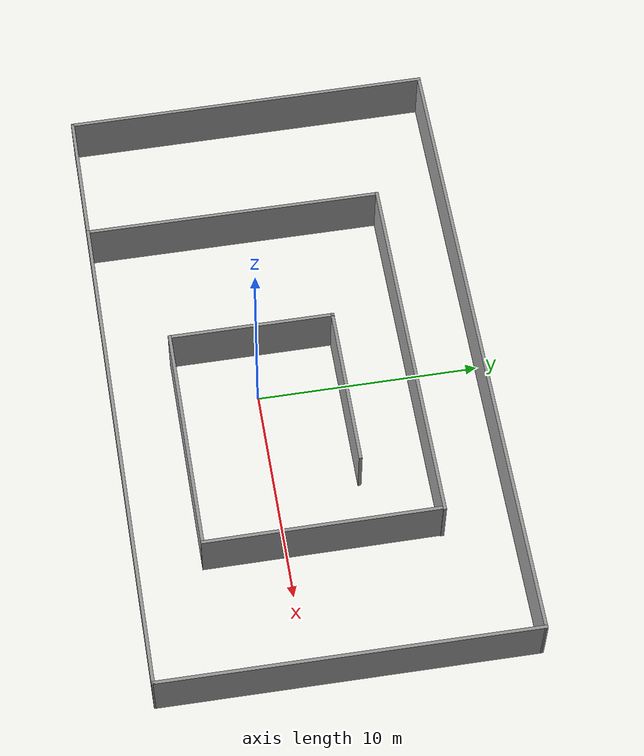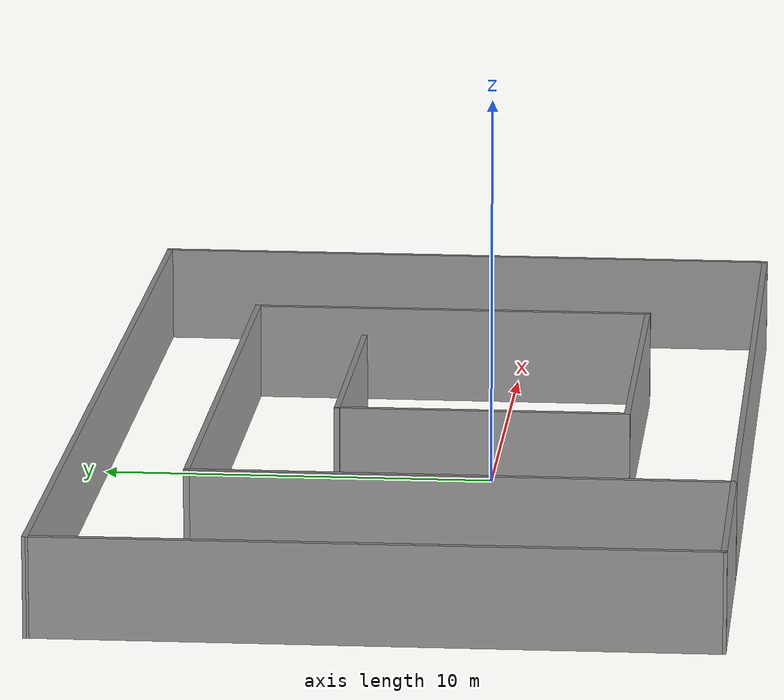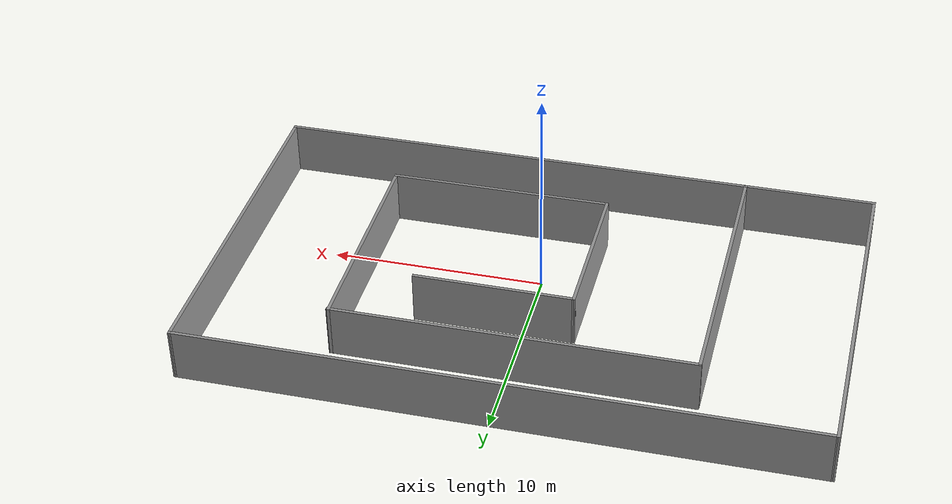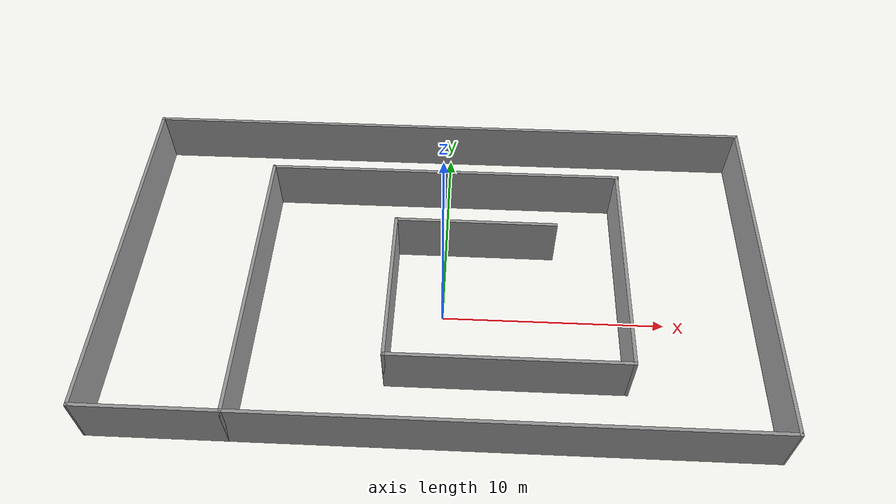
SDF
<?xml version='1.0'?>
<sdf version='1.7'>
  <model name='ICR2026_wall'>
    <pose>-0.238771 1.73397 0 0 -0 0</pose>
    <link name='Wall_0'>
      <collision name='Wall_0_Collision'>
        <geometry>
          <box>
            <size>7.5 0.15 2.5</size>
          </box>
        </geometry>
        <pose>0 0 1.25 0 -0 0</pose>
      </collision>
      <visual name='Wall_0_Visual'>
        <pose>0 0 1.25 0 -0 0</pose>
        <geometry>
          <box>
            <size>7.5 0.15 2.5</size>
          </box>
        </geometry>
        <material>
          <script>
            <uri>file://media/materials/scripts/gazebo.material</uri>
            <name>Gazebo/Grey</name>
          </script>
          <ambient>1 1 1 1</ambient>
        </material>
        <meta>
          <layer>0</layer>
        </meta>
      </visual>
      <pose>1.58092 2.01108 0 0 -0 3.13889</pose>
    </link>
    <link name='Wall_1'>
      <collision name='Wall_1_Collision'>
        <geometry>
          <box>
            <size>7.5 0.15 2.5</size>
          </box>
        </geometry>
        <pose>0 0 1.25 0 -0 0</pose>
      </collision>
      <visual name='Wall_1_Visual'>
        <pose>0 0 1.25 0 -0 0</pose>
        <geometry>
          <box>
            <size>7.5 0.15 2.5</size>
          </box>
        </geometry>
        <material>
          <script>
            <uri>file://media/materials/scripts/gazebo.material</uri>
            <name>Gazebo/Grey</name>
          </script>
          <ambient>1 1 1 1</ambient>
        </material>
        <meta>
          <layer>0</layer>
        </meta>
      </visual>
      <pose>-2.09423 -1.65397 0 0 -0 -1.5708</pose>
    </link>
    <link name='Wall_10'>
      <collision name='Wall_10_Collision'>
        <geometry>
          <box>
            <size>6.25 0.15 2.5</size>
          </box>
        </geometry>
        <pose>0 0 1.25 0 -0 0</pose>
      </collision>
      <visual name='Wall_10_Visual'>
        <pose>0 0 1.25 0 -0 0</pose>
        <geometry>
          <box>
            <size>6.25 0.15 2.5</size>
          </box>
        </geometry>
        <material>
          <script>
            <uri>file://media/materials/scripts/gazebo.material</uri>
            <name>Gazebo/Grey</name>
          </script>
          <ambient>1 1 1 1</ambient>
        </material>
        <meta>
          <layer>0</layer>
        </meta>
      </visual>
      <pose>-11.3058 -8.25297 0 0 -0 0</pose>
    </link>
    <link name='Wall_2'>
      <collision name='Wall_2_Collision'>
        <geometry>
          <box>
            <size>10.5 0.15 2.5</size>
          </box>
        </geometry>
        <pose>0 0 1.25 0 -0 0</pose>
      </collision>
      <visual name='Wall_2_Visual'>
        <pose>0 0 1.25 0 -0 0</pose>
        <geometry>
          <box>
            <size>10.5 0.15 2.5</size>
          </box>
        </geometry>
        <material>
          <script>
            <uri>file://media/materials/scripts/gazebo.material</uri>
            <name>Gazebo/Grey</name>
          </script>
          <ambient>1 1 1 1</ambient>
        </material>
        <meta>
          <layer>0</layer>
        </meta>
      </visual>
      <pose>3.08077 -5.32897 0 0 -0 0</pose>
    </link>
    <link name='Wall_3'>
      <collision name='Wall_3_Collision'>
        <geometry>
          <box>
            <size>10.6166 0.15 2.5</size>
          </box>
        </geometry>
        <pose>0 0 1.25 0 -0 0</pose>
      </collision>
      <visual name='Wall_3_Visual'>
        <pose>0 0 1.25 0 -0 0</pose>
        <geometry>
          <box>
            <size>10.6166 0.15 2.5</size>
          </box>
        </geometry>
        <material>
          <script>
            <uri>file://media/materials/scripts/gazebo.material</uri>
            <name>Gazebo/Grey</name>
          </script>
          <ambient>1 1 1 1</ambient>
        </material>
        <meta>
          <layer>0</layer>
        </meta>
      </visual>
      <pose>8.25592 -0.095743 0 0 -0 1.57077</pose>
    </link>
    <link name='Wall_4'>
      <collision name='Wall_4_Collision'>
        <geometry>
          <box>
            <size>16.6925 0.15 2.5</size>
          </box>
        </geometry>
        <pose>0 0 1.25 0 -0 0</pose>
      </collision>
      <visual name='Wall_4_Visual'>
        <pose>0 0 1.25 0 -0 0</pose>
        <geometry>
          <box>
            <size>16.6925 0.15 2.5</size>
          </box>
        </geometry>
        <material>
          <script>
            <uri>file://media/materials/scripts/gazebo.material</uri>
            <name>Gazebo/Grey</name>
          </script>
          <ambient>1 1 1 1</ambient>
        </material>
        <meta>
          <layer>0</layer>
        </meta>
      </visual>
      <pose>0.015448 5.13749 0 0 -0 3.14159</pose>
    </link>
    <link name='Wall_5'>
      <collision name='Wall_5_Collision'>
        <geometry>
          <box>
            <size>13.5 0.15 2.5</size>
          </box>
        </geometry>
        <pose>0 0 1.25 0 -0 0</pose>
      </collision>
      <visual name='Wall_5_Visual'>
        <pose>0 0 1.25 0 -0 0</pose>
        <geometry>
          <box>
            <size>13.5 0.15 2.5</size>
          </box>
        </geometry>
        <material>
          <script>
            <uri>file://media/materials/scripts/gazebo.material</uri>
            <name>Gazebo/Grey</name>
          </script>
          <ambient>1 1 1 1</ambient>
        </material>
        <meta>
          <layer>0</layer>
        </meta>
      </visual>
      <pose>-8.25576 -1.57797 0 0 -0 -1.5708</pose>
    </link>
    <link name='Wall_6'>
      <collision name='Wall_6_Collision'>
        <geometry>
          <box>
            <size>22.75 0.15 2.5</size>
          </box>
        </geometry>
        <pose>0 0 1.25 0 -0 0</pose>
      </collision>
      <visual name='Wall_6_Visual'>
        <pose>0 0 1.25 0 -0 0</pose>
        <geometry>
          <box>
            <size>22.75 0.15 2.5</size>
          </box>
        </geometry>
        <material>
          <script>
            <uri>file://media/materials/scripts/gazebo.material</uri>
            <name>Gazebo/Grey</name>
          </script>
          <ambient>1 1 1 1</ambient>
        </material>
        <meta>
          <layer>0</layer>
        </meta>
      </visual>
      <pose>3.04424 -8.25297 0 0 -0 0</pose>
    </link>
    <link name='Wall_7'>
      <collision name='Wall_7_Collision'>
        <geometry>
          <box>
            <size>16.6562 0.15 2.5</size>
          </box>
        </geometry>
        <pose>0 0 1.25 0 -0 0</pose>
      </collision>
      <visual name='Wall_7_Visual'>
        <pose>0 0 1.25 0 -0 0</pose>
        <geometry>
          <box>
            <size>16.6562 0.15 2.5</size>
          </box>
        </geometry>
        <material>
          <script>
            <uri>file://media/materials/scripts/gazebo.material</uri>
            <name>Gazebo/Grey</name>
          </script>
          <ambient>1 1 1 1</ambient>
        </material>
        <meta>
          <layer>0</layer>
        </meta>
      </visual>
      <pose>14.3911 -0 0 0 -0 1.56512</pose>
    </link>
    <link name='Wall_8'>
      <collision name='Wall_8_Collision'>
        <geometry>
          <box>
            <size>29.0259 0.15 2.5</size>
          </box>
        </geometry>
        <pose>0 0 1.25 0 -0 0</pose>
      </collision>
      <visual name='Wall_8_Visual'>
        <pose>0 0 1.25 0 -0 0</pose>
        <geometry>
          <box>
            <size>29.0259 0.15 2.5</size>
          </box>
        </geometry>
        <material>
          <script>
            <uri>file://media/materials/scripts/gazebo.material</uri>
            <name>Gazebo/Grey</name>
          </script>
          <ambient>1 1 1 1</ambient>
        </material>
        <meta>
          <layer>0</layer>
        </meta>
      </visual>
      <pose>-2.6e-05 8.25297 0 0 -0 3.14159</pose>
    </link>
    <link name='Wall_9'>
      <collision name='Wall_9_Collision'>
        <geometry>
          <box>
            <size>16.6561 0.15 2.5</size>
          </box>
        </geometry>
        <pose>0 0 1.25 0 -0 0</pose>
      </collision>
      <visual name='Wall_9_Visual'>
        <pose>0 0 1.25 0 -0 0</pose>
        <geometry>
          <box>
            <size>16.6561 0.15 2.5</size>
          </box>
        </geometry>
        <material>
          <script>
            <uri>file://media/materials/scripts/gazebo.material</uri>
            <name>Gazebo/Grey</name>
          </script>
          <ambient>1 1 1 1</ambient>
        </material>
        <meta>
          <layer>0</layer>
        </meta>
      </visual>
      <pose>-14.3969 -0 0 0 -0 -1.56581</pose>
    </link>
    <static>1</static>
  </model>
</sdf>
